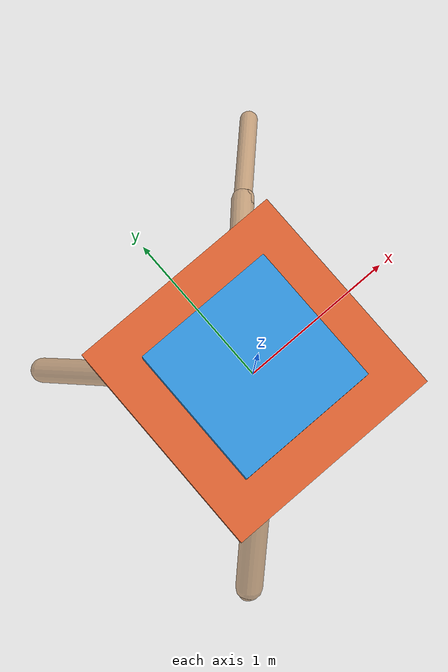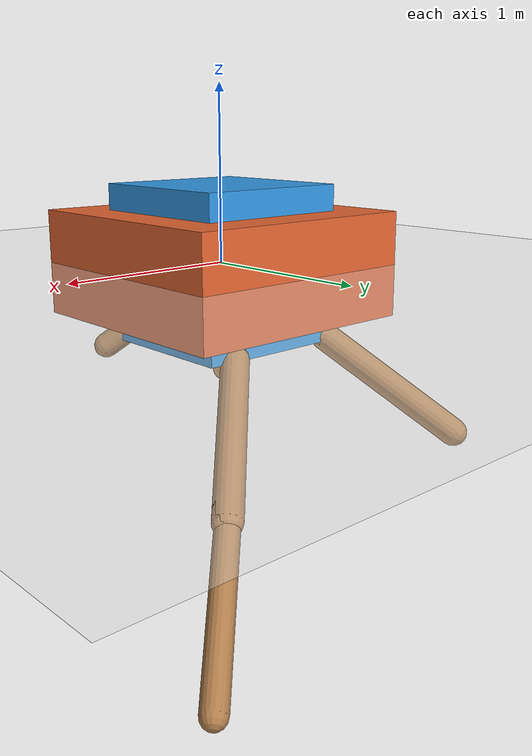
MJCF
<mujoco model="dex-gripper">
  <asset>
    <texture name="skybox" type="skybox" builtin="gradient" rgb1=".2 .3 .4" rgb2="0 0 0" width="800" height="800" mark="random" markrgb="1 1 1"/>
    <texture name="grid" type="2d" builtin="checker" rgb1=".2 .1 .2" rgb2=".3 .2 .3" width="300" height="300" mark="edge" markrgb=".3 .2 .3"/>
    <material name="grid" texture="grid" texrepeat="1 1" texuniform="true" reflectance=".2"/>
    <material name="self" rgba=".7 .5 .3 1"/>
  </asset>
  <visual>
    <headlight ambient=".4 .4 .4" diffuse=".8 .8 .8" specular="0.1 0.1 0.1"/>
    <map znear=".001"/>
    <quality shadowsize="16384"/>
  </visual>
  <compiler angle="degree" coordinate="global" inertiafromgeom="true"/>
  <option integrator="RK4" timestep="0.01"/>
  <default>
    <joint armature="1" damping="1" limited="true"/>
    <geom conaffinity="0" condim="3" density="5.0" friction="1 0.5 0.5" margin="0.01" rgba=".7 .5 .3 1"/>
  </default>
  <worldbody>
    <light cutoff="100" diffuse="1 1 1" dir="0.3 0 -1.3" directional="true" exponent="1" pos="-30 0 130" specular=".1 .1 .1"/>
    <geom conaffinity="1" condim="3" name="floor" pos="0 0 0" rgba="1 1 1 1" size="200 200 .125" type="plane" material="grid"/>
    <body name="0" pos="0 0 0" gravcomp="1">
      <camera name="track" mode="fixed" pos="0 10 5" quat="0 0 0.547 0.892"/>
      <geom pos="0 0 0" size="0.282932 0.20772 0.19704" type="ellipsoid"/>
      <joint name="root_x" type="slide" axis="1 0 0" pos="0 0 0" limited="false" armature="0" damping="0"/>
      <joint name="root_y" type="slide" axis="0 1 0" pos="0 0 0" limited="false" armature="0" damping="0"/>
      <joint name="root_z" type="slide" axis="0 0 1" pos="0 0 0" limited="false" armature="0" damping="0"/>
      <body name="1" pos="0 0 0" gravcomp="1">
        <joint axis="-0.707107 0.707107 0" name="1_joint" pos="0 0 0" range="-30 30" type="hinge" damping="0"/>
        <geom fromto="-0.04221 -0.062663 0.062872 0.33568 0.498336 -0.5" size="0.064083 0.064083 0.064083" type="capsule"/>
        <body name="11" pos="0.33568 0.498336 -0.5" gravcomp="1">
          <joint axis="-0.707107 0.707107 0" name="11_joint" pos="0.33568 0.498336 -0.5" range="-30 30" type="hinge" damping="0"/>
          <geom fromto="0.277954 0.437702 -0.439332 0.811432 0.998052 -1" size="0.077782 0.077782 0.077782" type="capsule"/>
          <body name="111" pos="0.811432 0.998052 -1" gravcomp="1">
            <joint axis="-0.707107 0.707107 0" name="111_joint" pos="0.811432 0.998052 -1" range="-30 30" type="hinge" damping="0"/>
            <geom fromto="0.750087 0.937047 -0.938627 1.311203 1.495056 -1.5" size="0.063398 0.063398 0.063398" type="capsule"/>
          </body>
        </body>
        <body name="21" pos="0.33568 0.498336 -0.5" gravcomp="1">
          <joint axis="-0.707107 0.707107 0" name="21_joint" pos="0.33568 0.498336 -0.5" range="-30 30" type="hinge" damping="0"/>
          <geom fromto="0.256087 0.418703 -0.420341 0.835263 0.998172 -1" size="0.059971 0.059971 0.059971" type="capsule"/>
        </body>
      </body>
      <body name="2" pos="0 0 0" gravcomp="1">
        <joint axis="-0.707107 -0.707107 0" name="2_joint" pos="0 0 0" range="-30 30" type="hinge" damping="0"/>
        <geom fromto="0.048422 -0.047433 0.048904 -0.495072 0.484957 -0.5" size="0.066427 0.066427 0.066427" type="capsule"/>
        <body name="12" pos="-0.495072 0.484957 -0.5" gravcomp="1">
          <joint axis="-0.707107 -0.707107 0" name="12_joint" pos="-0.495072 0.484957 -0.5" range="-30 30" type="hinge" damping="0"/>
          <geom fromto="-0.43125 0.414717 -0.429749 -0.949309 0.984878 -1" size="0.081953 0.081953 0.081953" type="capsule"/>
        </body>
      </body>
      <body name="3" pos="0 0 0" gravcomp="1">
        <joint axis="0.707107 -0.707107 0" name="3_joint" pos="0 0 0" range="-30 30" type="hinge" damping="0"/>
        <geom fromto="0.035174 0.047961 0.048315 -0.364005 -0.496329 -0.5" size="0.07701 0.07701 0.07701" type="capsule"/>
        <body name="13" pos="-0.364005 -0.496329 -0.5" gravcomp="1">
          <joint axis="0.707107 -0.707107 0" name="13_joint" pos="-0.364005 -0.496329 -0.5" range="-30 30" type="hinge" damping="0"/>
          <geom fromto="-0.303245 -0.434532 -0.435962 -0.838408 -0.978828 -1" size="0.089506 0.089506 0.089506" type="capsule"/>
        </body>
        <body name="23" pos="-0.364005 -0.496329 -0.5" gravcomp="1">
          <joint axis="0.707107 -0.707107 0" name="23_joint" pos="-0.364005 -0.496329 -0.5" range="-30 30" type="hinge" damping="0"/>
          <geom fromto="-0.288837 -0.421376 -0.424675 -0.862966 -0.993859 -1" size="0.064604 0.064604 0.064604" type="capsule"/>
        </body>
      </body>
      <body name="4" pos="0 0 0" gravcomp="1">
        <joint axis="0.707107 0.707107 0" name="4_joint" pos="0 0 0" range="-30 30" type="hinge" damping="0"/>
        <geom fromto="-0.072359 0.075518 0.075707 0.477888 -0.498749 -0.5" size="0.072525 0.072525 0.072525" type="capsule"/>
      </body>
    </body>
    <body name="box_1" pos="0 0 0">
      <freejoint name="box_1_joint"/>
      <geom name="box_1" type="box" size="0.45 0.45 0.45" rgba="0.2 0.6 0.9 1.0" contype="1" conaffinity="1" density="10" friction="2.5 0.1 0.05"/>
    </body>
    <body name="box_2" pos="3.0 0 0.425">
      <freejoint name="box_2_joint"/>
      <geom name="box_2" type="box" size="0.7 0.7 0.3" rgba="0.9 0.4 0.2 1.0" contype="1" conaffinity="1" density="10" friction="2.5 0.1 0.05"/>
    </body>
  </worldbody>
  <actuator>
    <motor name="root_x_motor" joint="root_x" gear="50" ctrllimited="true" ctrlrange="-1 1"/>
    <motor name="root_y_motor" joint="root_y" gear="50" ctrllimited="true" ctrlrange="-1 1"/>
    <motor name="root_z_motor" joint="root_z" gear="50" ctrllimited="true" ctrlrange="-1 1"/>
    <motor ctrllimited="true" ctrlrange="-1.0 1.0" joint="1_joint" gear="20.003269" name="1_joint"/>
    <motor ctrllimited="true" ctrlrange="-1.0 1.0" joint="2_joint" gear="21.201863" name="2_joint"/>
    <motor ctrllimited="true" ctrlrange="-1.0 1.0" joint="3_joint" gear="20.040332" name="3_joint"/>
    <motor ctrllimited="true" ctrlrange="-1.0 1.0" joint="4_joint" gear="59.932987" name="4_joint"/>
    <motor ctrllimited="true" ctrlrange="-1.0 1.0" joint="11_joint" gear="45.074873" name="11_joint"/>
    <motor ctrllimited="true" ctrlrange="-1.0 1.0" joint="12_joint" gear="55.22977" name="12_joint"/>
    <motor ctrllimited="true" ctrlrange="-1.0 1.0" joint="13_joint" gear="20.568839" name="13_joint"/>
    <motor ctrllimited="true" ctrlrange="-1.0 1.0" joint="21_joint" gear="43.846113" name="21_joint"/>
    <motor ctrllimited="true" ctrlrange="-1.0 1.0" joint="23_joint" gear="21.776062" name="23_joint"/>
    <motor ctrllimited="true" ctrlrange="-1.0 1.0" joint="111_joint" gear="57.157561" name="111_joint"/>
  </actuator>
</mujoco>
